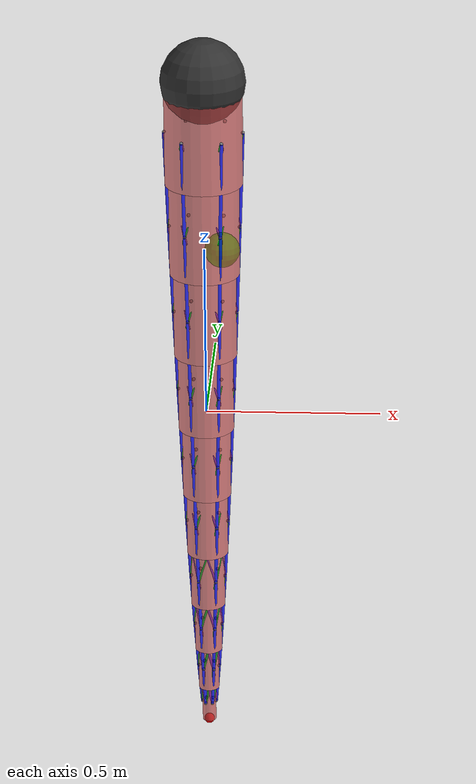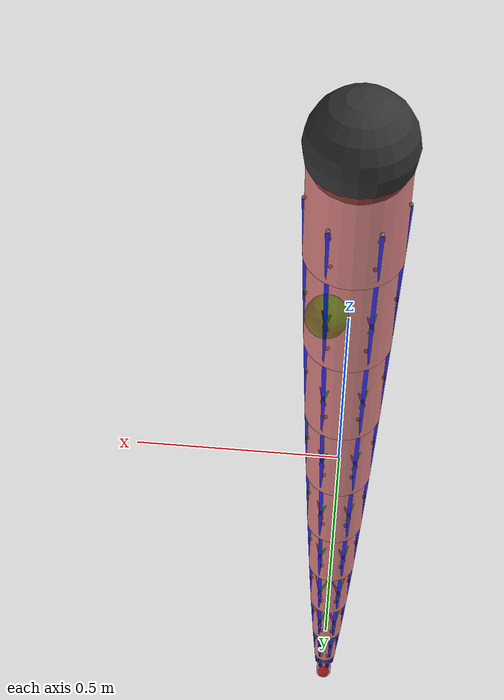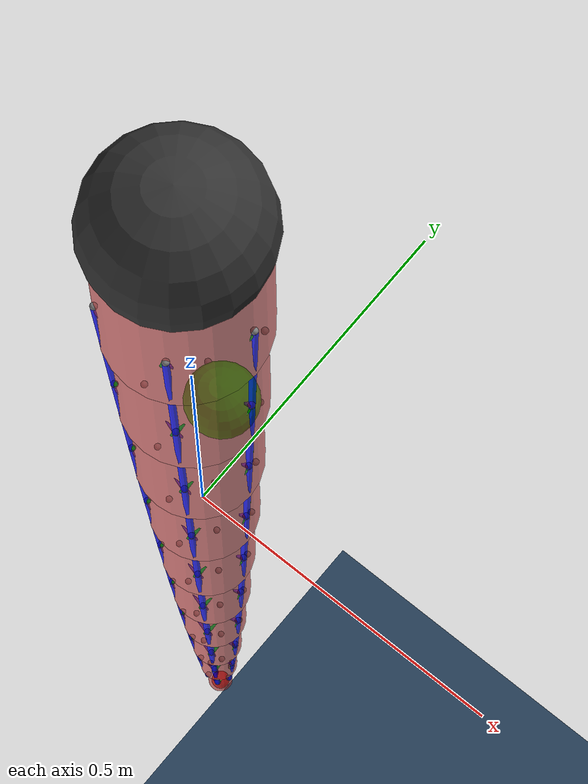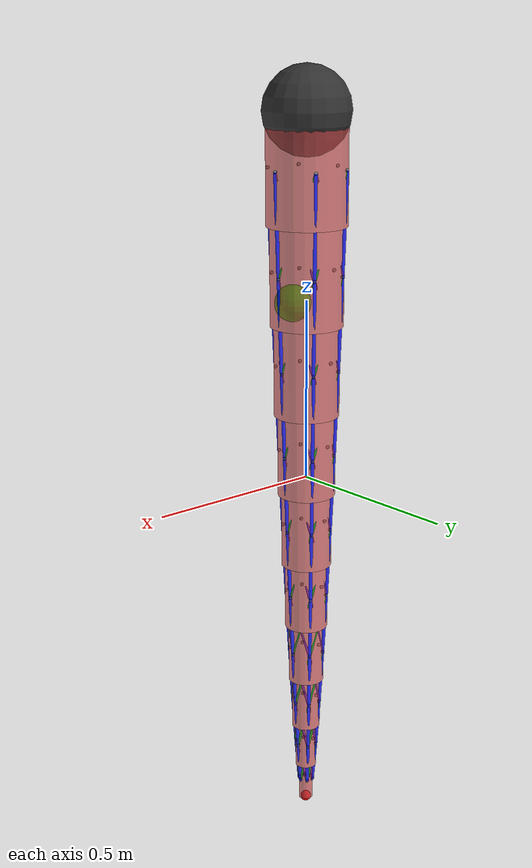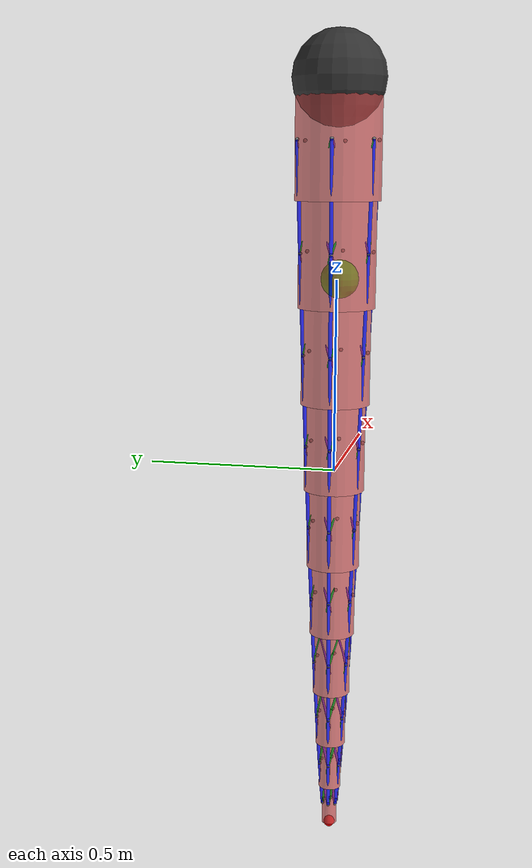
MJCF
<mujoco model="octopus_arm">
  <compiler angle="radian" coordinate="local"/>
  <option gravity="0 0 0" timestep="0.001" integrator="RK4"/>

  <visual>
    <global offwidth="1440" offheight="768" azimuth="90" elevation="-45"/>
    <headlight diffuse="0.6 0.6 0.6" ambient="0.3 0.3 0.3" specular="0 0 0"/>
    <rgba haze="0.15 0.25 0.35 1"/>
  </visual>

  <asset>
    <texture type="skybox" builtin="gradient" rgb1="0.3 0.5 0.7" rgb2="0 0 0" width="512" height="3072"/>
    <texture type="2d" name="groundplane" builtin="checker" rgb1="0.2 0.3 0.4" rgb2="0.1 0.2 0.3" markrgb="0.8 0.8 0.8" width="300" height="300"/>
    <material name="groundplane" texture="groundplane" texuniform="true" texrepeat="5 5" reflectance="0.2"/>
    <material name="base_mat" rgba="0.2 0.2 0.2 1"/>
    <material name="segment_mat" rgba="0.8 0.3 0.3 0.7"/>
  </asset>

  <default>
    <geom type="cylinder" material="segment_mat" condim="3" density="500"/>
    <joint type="ball" armature="0.01" damping="0.5" stiffness="0.1"/>
    <general dyntype="muscle" gaintype="muscle" biastype="muscle" ctrlrange="0 1"/>
  </default>

  <worldbody>
    <light directional="true" diffuse=".8 .8 .8" specular=".2 .2 .2" pos="0 0 5" dir="0 0 -1"/>
    <geom name="floor" type="plane" pos="0 0 -2" size="10 10 0.1" material="groundplane"/>
    <camera name="front" pos="3.5 0 0.2" xyaxes="0 1 0 0 0 1"/>
    <body name="base" pos="0 0 1">
      <geom type="sphere" size="0.12" material="base_mat"/>

      <body name="seg1" pos="0 0 -0.15">
        <joint name="j1"/>
        <geom fromto="0 0 0.15 0 0 -0.15" size="0.11 0.10"/>
        <site name="s1_1" pos="0.11 0 0"/>
        <site name="s1_2" pos="0.055 0.0953 0"/>
        <site name="s1_3" pos="-0.055 0.0953 0"/>
        <site name="s1_4" pos="-0.11 0 0"/>
        <site name="s1_5" pos="-0.055 -0.0953 0"/>
        <site name="s1_6" pos="0.055 -0.0953 0"/>

        <body name="seg2" pos="0 0 -0.28">
          <joint name="j2"/>
          <geom fromto="0 0 0.14 0 0 -0.14" size="0.10 0.09"/>
          <site name="s2_1" pos="0.10 0 0"/>
          <site name="s2_2" pos="0.05 0.0866 0"/>
          <site name="s2_3" pos="-0.05 0.0866 0"/>
          <site name="s2_4" pos="-0.10 0 0"/>
          <site name="s2_5" pos="-0.05 -0.0866 0"/>
          <site name="s2_6" pos="0.05 -0.0866 0"/>

          <body name="seg3" pos="0 0 -0.26">
            <joint name="j3"/>
            <geom fromto="0 0 0.13 0 0 -0.13" size="0.09 0.08"/>
            <site name="s3_1" pos="0.09 0 0"/>
            <site name="s3_2" pos="0.045 0.0779 0"/>
            <site name="s3_3" pos="-0.045 0.0779 0"/>
            <site name="s3_4" pos="-0.09 0 0"/>
            <site name="s3_5" pos="-0.045 -0.0779 0"/>
            <site name="s3_6" pos="0.045 -0.0779 0"/>

            <body name="seg4" pos="0 0 -0.24">
              <joint name="j4"/>
              <geom fromto="0 0 0.12 0 0 -0.12" size="0.08 0.07"/>
              <site name="s4_1" pos="0.08 0 0"/>
              <site name="s4_2" pos="0.04 0.0693 0"/>
              <site name="s4_3" pos="-0.04 0.0693 0"/>
              <site name="s4_4" pos="-0.08 0 0"/>
              <site name="s4_5" pos="-0.04 -0.0693 0"/>
              <site name="s4_6" pos="0.04 -0.0693 0"/>

              <body name="seg5" pos="0 0 -0.22">
                <joint name="j5"/>
                <geom fromto="0 0 0.11 0 0 -0.11" size="0.07 0.06"/>
                <site name="s5_1" pos="0.07 0 0"/>
                <site name="s5_2" pos="0.035 0.0606 0"/>
                <site name="s5_3" pos="-0.035 0.0606 0"/>
                <site name="s5_4" pos="-0.07 0 0"/>
                <site name="s5_5" pos="-0.035 -0.0606 0"/>
                <site name="s5_6" pos="0.035 -0.0606 0"/>

                <body name="seg6" pos="0 0 -0.20">
                  <joint name="j6"/>
                  <geom fromto="0 0 0.10 0 0 -0.10" size="0.06 0.05"/>
                  <site name="s6_1" pos="0.06 0 0"/>
                  <site name="s6_2" pos="0.03 0.0520 0"/>
                  <site name="s6_3" pos="-0.03 0.0520 0"/>
                  <site name="s6_4" pos="-0.06 0 0"/>
                  <site name="s6_5" pos="-0.03 -0.0520 0"/>
                  <site name="s6_6" pos="0.03 -0.0520 0"/>

                  <body name="seg7" pos="0 0 -0.18">
                    <joint name="j7"/>
                    <geom fromto="0 0 0.09 0 0 -0.09" size="0.05 0.04"/>
                    <site name="s7_1" pos="0.05 0 0"/>
                    <site name="s7_2" pos="0.025 0.0433 0"/>
                    <site name="s7_3" pos="-0.025 0.0433 0"/>
                    <site name="s7_4" pos="-0.05 0 0"/>
                    <site name="s7_5" pos="-0.025 -0.0433 0"/>
                    <site name="s7_6" pos="0.025 -0.0433 0"/>

                    <body name="seg8" pos="0 0 -0.16">
                      <joint name="j8"/>
                      <geom fromto="0 0 0.08 0 0 -0.08" size="0.04 0.03"/>
                      <site name="s8_1" pos="0.04 0 0"/>
                      <site name="s8_2" pos="0.02 0.0346 0"/>
                      <site name="s8_3" pos="-0.02 0.0346 0"/>
                      <site name="s8_4" pos="-0.04 0 0"/>
                      <site name="s8_5" pos="-0.02 -0.0346 0"/>
                      <site name="s8_6" pos="0.02 -0.0346 0"/>

                      <body name="seg9" pos="0 0 -0.14">
                        <joint name="j9"/>
                        <geom fromto="0 0 0.07 0 0 -0.07" size="0.03 0.02"/>
                        <site name="s9_1" pos="0.03 0 0"/>
                        <site name="s9_2" pos="0.015 0.0260 0"/>
                        <site name="s9_3" pos="-0.015 0.0260 0"/>
                        <site name="s9_4" pos="-0.03 0 0"/>
                        <site name="s9_5" pos="-0.015 -0.0260 0"/>
                        <site name="s9_6" pos="0.015 -0.0260 0"/>

                        <body name="seg10" pos="0 0 -0.12">
                          <joint name="j10"/>
                          <geom fromto="0 0 0.06 0 0 -0.06" size="0.02 0.01"/>
                          <site name="tip" pos="0 0 -0.06" size="0.015" rgba="1 0 0 1"/>
                          <site name="s10_1" pos="0.02 0 0"/>
                          <site name="s10_2" pos="0.01 0.0173 0"/>
                          <site name="s10_3" pos="-0.01 0.0173 0"/>
                          <site name="s10_4" pos="-0.02 0 0"/>
                          <site name="s10_5" pos="-0.01 -0.0173 0"/>
                          <site name="s10_6" pos="0.01 -0.0173 0"/>
                        </body>
                      </body>
                    </body>
                  </body>
                </body>
              </body>
            </body>
          </body>
        </body>
      </body>
    </body>
    <site name="tgt" type="sphere" size="0.05" pos="0.05 0 0.5" rgba="0 255 0 1"/>
  </worldbody>

<!--18 muscle paths: 6 longitudinal muscles (blue), 6 helix muscles turning to the left side (purple), 6 helix muscles turning to the left side (green) -->

  <tendon>
    <spatial name="muscle_long_1" width="0.005" rgba="0 0 1 0.8">
      <site site="s1_1"/> <site site="s2_1"/> <site site="s3_1"/> <site site="s4_1"/> <site site="s5_1"/>
      <site site="s6_1"/> <site site="s7_1"/> <site site="s8_1"/> <site site="s9_1"/> <site site="s10_1"/>
    </spatial>

    <spatial name="muscle_long_2" width="0.005" rgba="0 0 1 0.8">
      <site site="s1_2"/> <site site="s2_2"/> <site site="s3_2"/> <site site="s4_2"/> <site site="s5_2"/>
      <site site="s6_2"/> <site site="s7_2"/> <site site="s8_2"/> <site site="s9_2"/> <site site="s10_2"/>
    </spatial>

    <spatial name="muscle_long_3" width="0.005" rgba="0 0 1 0.8">
      <site site="s1_3"/> <site site="s2_3"/> <site site="s3_3"/> <site site="s4_3"/> <site site="s5_3"/>
      <site site="s6_3"/> <site site="s7_3"/> <site site="s8_3"/> <site site="s9_3"/> <site site="s10_3"/>
    </spatial>

    <spatial name="muscle_long_4" width="0.005" rgba="0 0 1 0.8">
      <site site="s1_4"/> <site site="s2_4"/> <site site="s3_4"/> <site site="s4_4"/> <site site="s5_4"/>
      <site site="s6_4"/> <site site="s7_4"/> <site site="s8_4"/> <site site="s9_4"/> <site site="s10_4"/>
    </spatial>

    <spatial name="muscle_long_5" width="0.005" rgba="0 0 1 0.8">
      <site site="s1_5"/> <site site="s2_5"/> <site site="s3_5"/> <site site="s4_5"/> <site site="s5_5"/>
      <site site="s6_5"/> <site site="s7_5"/> <site site="s8_5"/> <site site="s9_5"/> <site site="s10_5"/>
    </spatial>

    <spatial name="muscle_long_6" width="0.005" rgba="0 0 1 0.8">
      <site site="s1_6"/> <site site="s2_6"/> <site site="s3_6"/> <site site="s4_6"/> <site site="s5_6"/>
      <site site="s6_6"/> <site site="s7_6"/> <site site="s8_6"/> <site site="s9_6"/> <site site="s10_6"/>
    </spatial>

    <spatial name="muscle_helix_left_1" width="0.004" rgba="0.5 0 0.5 0.8">
      <site site="s1_1"/> <site site="s2_2"/> <site site="s3_3"/> <site site="s4_4"/> <site site="s5_5"/>
      <site site="s6_6"/> <site site="s7_1"/> <site site="s8_2"/> <site site="s9_3"/> <site site="s10_4"/>
    </spatial>

    <spatial name="muscle_helix_left_2" width="0.004" rgba="0.5 0 0.5 0.8">
      <site site="s1_2"/> <site site="s2_3"/> <site site="s3_4"/> <site site="s4_5"/> <site site="s5_6"/>
      <site site="s6_1"/> <site site="s7_2"/> <site site="s8_3"/> <site site="s9_4"/> <site site="s10_5"/>
    </spatial>

    <spatial name="muscle_helix_left_3" width="0.004" rgba="0.5 0 0.5 0.8">
      <site site="s1_3"/> <site site="s2_4"/> <site site="s3_5"/> <site site="s4_6"/> <site site="s5_1"/>
      <site site="s6_2"/> <site site="s7_3"/> <site site="s8_4"/> <site site="s9_5"/> <site site="s10_6"/>
    </spatial>

    <spatial name="muscle_helix_left_4" width="0.004" rgba="0.5 0 0.5 0.8">
      <site site="s1_4"/> <site site="s2_5"/> <site site="s3_6"/> <site site="s4_1"/> <site site="s5_2"/>
      <site site="s6_3"/> <site site="s7_4"/> <site site="s8_5"/> <site site="s9_6"/> <site site="s10_1"/>
    </spatial>

    <spatial name="muscle_helix_left_5" width="0.004" rgba="0.5 0 0.5 0.8">
      <site site="s1_5"/> <site site="s2_6"/> <site site="s3_1"/> <site site="s4_2"/> <site site="s5_3"/>
      <site site="s6_4"/> <site site="s7_5"/> <site site="s8_6"/> <site site="s9_1"/> <site site="s10_2"/>
    </spatial>

    <spatial name="muscle_helix_left_6" width="0.004" rgba="0.5 0 0.5 0.8">
      <site site="s1_6"/> <site site="s2_1"/> <site site="s3_2"/> <site site="s4_3"/> <site site="s5_4"/>
      <site site="s6_5"/> <site site="s7_6"/> <site site="s8_1"/> <site site="s9_2"/> <site site="s10_3"/>
    </spatial>

    <spatial name="muscle_helix_right_1" width="0.004" rgba="0 0.5 0 0.8">
      <site site="s1_1"/> <site site="s2_6"/> <site site="s3_5"/> <site site="s4_4"/> <site site="s5_3"/>
      <site site="s6_2"/> <site site="s7_1"/> <site site="s8_6"/> <site site="s9_5"/> <site site="s10_4"/>
    </spatial>

    <spatial name="muscle_helix_right_2" width="0.004" rgba="0 0.5 0 0.8">
      <site site="s1_2"/> <site site="s2_1"/> <site site="s3_6"/> <site site="s4_5"/> <site site="s5_4"/>
      <site site="s6_3"/> <site site="s7_2"/> <site site="s8_1"/> <site site="s9_6"/> <site site="s10_5"/>
    </spatial>

    <spatial name="muscle_helix_right_3" width="0.004" rgba="0 0.5 0 0.8">
      <site site="s1_3"/> <site site="s2_2"/> <site site="s3_1"/> <site site="s4_6"/> <site site="s5_5"/>
      <site site="s6_4"/> <site site="s7_3"/> <site site="s8_2"/> <site site="s9_1"/> <site site="s10_6"/>
    </spatial>

    <spatial name="muscle_helix_right_4" width="0.004" rgba="0 0.5 0 0.8">
      <site site="s1_4"/> <site site="s2_3"/> <site site="s3_2"/> <site site="s4_1"/> <site site="s5_6"/>
      <site site="s6_5"/> <site site="s7_4"/> <site site="s8_3"/> <site site="s9_2"/> <site site="s10_1"/>
    </spatial>

    <spatial name="muscle_helix_right_5" width="0.004" rgba="0 0.5 0 0.8">
      <site site="s1_5"/> <site site="s2_4"/> <site site="s3_3"/> <site site="s4_2"/> <site site="s5_1"/>
      <site site="s6_6"/> <site site="s7_5"/> <site site="s8_4"/> <site site="s9_3"/> <site site="s10_2"/>
    </spatial>

    <spatial name="muscle_helix_right_6" width="0.004" rgba="0 0.5 0 0.8">
      <site site="s1_6"/> <site site="s2_5"/> <site site="s3_4"/> <site site="s4_3"/> <site site="s5_2"/>
      <site site="s6_1"/> <site site="s7_6"/> <site site="s8_5"/> <site site="s9_4"/> <site site="s10_3"/>
    </spatial>
  </tendon>

  <actuator>
    <muscle name="act_long_1" tendon="muscle_long_1"/>
    <muscle name="act_long_2" tendon="muscle_long_2"/>
    <muscle name="act_long_3" tendon="muscle_long_3"/>
    <muscle name="act_long_4" tendon="muscle_long_4"/>
    <muscle name="act_long_5" tendon="muscle_long_5"/>
    <muscle name="act_long_6" tendon="muscle_long_6"/>

    <muscle name="act_helix_left_1" tendon="muscle_helix_left_1"/>
    <muscle name="act_helix_left_2" tendon="muscle_helix_left_2"/>
    <muscle name="act_helix_left_3" tendon="muscle_helix_left_3"/>
    <muscle name="act_helix_left_4" tendon="muscle_helix_left_4"/>
    <muscle name="act_helix_left_5" tendon="muscle_helix_left_5"/>
    <muscle name="act_helix_left_6" tendon="muscle_helix_left_6"/>

    <muscle name="act_helix_right_1" tendon="muscle_helix_right_1"/>
    <muscle name="act_helix_right_2" tendon="muscle_helix_right_2"/>
    <muscle name="act_helix_right_3" tendon="muscle_helix_right_3"/>
    <muscle name="act_helix_right_4" tendon="muscle_helix_right_4"/>
    <muscle name="act_helix_right_5" tendon="muscle_helix_right_5"/>
    <muscle name="act_helix_right_6" tendon="muscle_helix_right_6"/>
  </actuator>
</mujoco>
